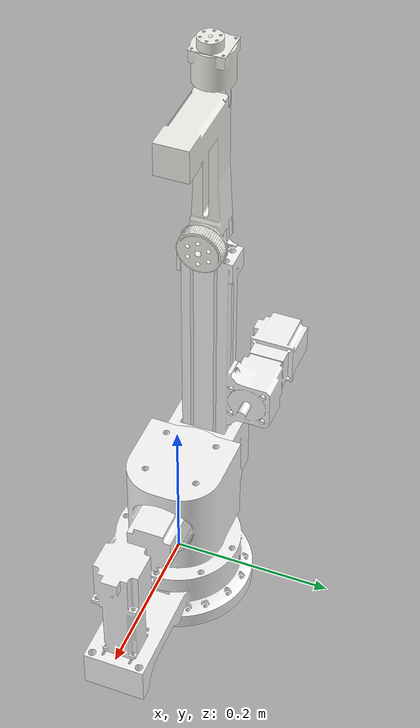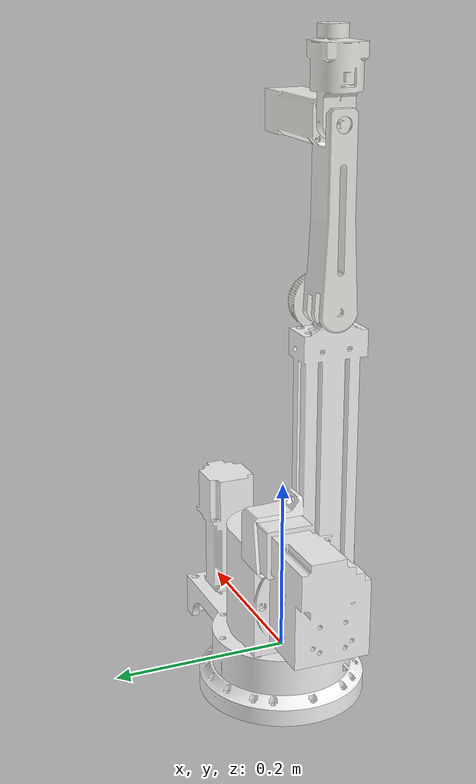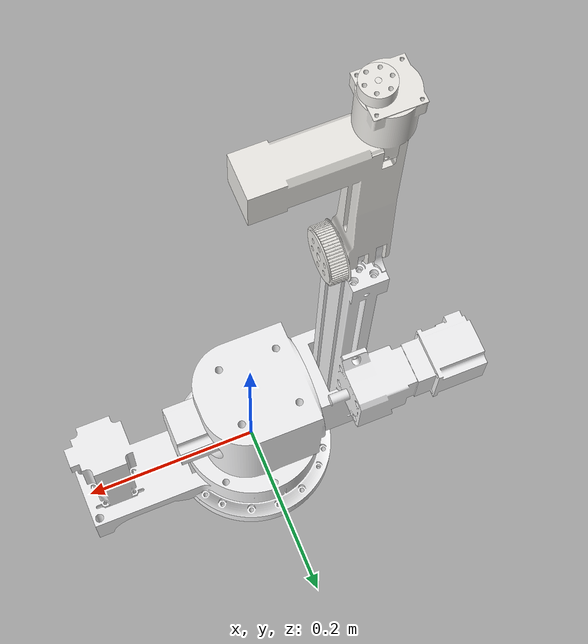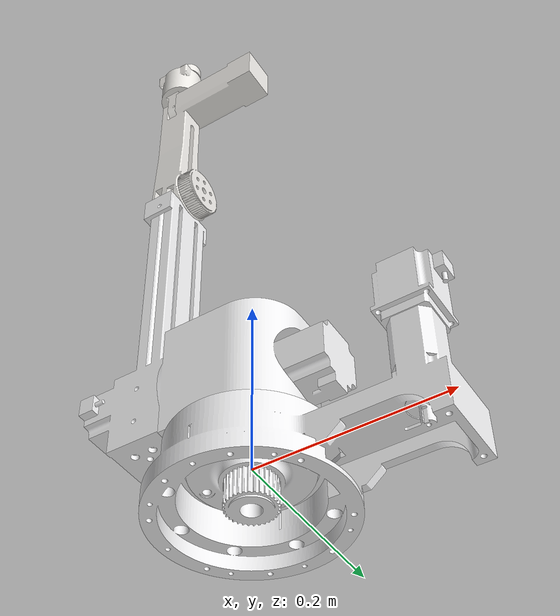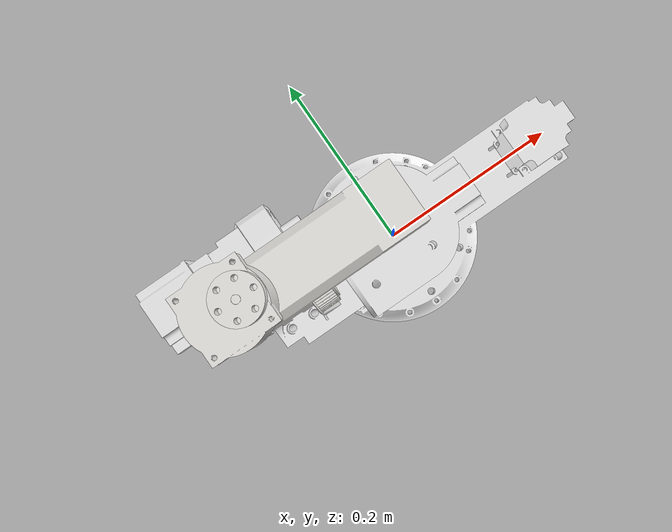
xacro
<?xml version="1.0"?>
<robot xmlns:xacro="http://www.ros.org/wiki/xacro" name="Untitled">

  <!-- Materials (shared across all assemblies) -->
  <material name="Aluminum_6061">
    <color rgba="0.961 0.961 0.965 1.0"/>
  </material>
  <material name="pla_plus">
    <color rgba="0.941 0.933 0.914 1.0"/>
  </material>

  <!-- Assembly includes -->
  <xacro:include filename="$(find roscue_arm_description)/urdf/assemblies/Untitled.urdf.xacro"/>

  <!-- Instantiate assemblies -->
  <xacro:Untitled prefix=""/>

</robot>

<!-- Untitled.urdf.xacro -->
<robot xmlns:xacro="http://www.ros.org/wiki/xacro" name="Untitled_macro">

  <xacro:macro name="Untitled" params="prefix">

    <!-- Links -->
    <link name="${prefix}base_link">
      <inertial>
        <origin xyz="0.085592 -0.000006 0.033051" rpy="0 0 0"/>
        <mass value="2.059958"/>
        <inertia ixx="9.903517e-03" ixy="-2.704119e-06" ixz="-7.021209e-03"
                 iyy="2.508404e-02" iyz="-5.074094e-07" izz="2.166122e-02"/>
      </inertial>
      <visual>
        <origin xyz="0.000000 0.000000 0.000000" rpy="0 0 0"/>
        <geometry>
          <mesh filename="package://roscue_arm_description/meshes/Untitled/base_link.dae" scale="1 1 1"/>
        </geometry>
        <material name="Aluminum_6061"/>
      </visual>
      <collision>
        <origin xyz="0.000000 0.000000 0.000000" rpy="0 0 0"/>
        <geometry>
          <mesh filename="package://roscue_arm_description/meshes/Untitled/base_link.dae" scale="1 1 1"/>
        </geometry>
      </collision>
    </link>

    <link name="${prefix}second_arm">
      <inertial>
        <origin xyz="0.004239 0.000002 0.047508" rpy="0 0 0"/>
        <mass value="2.740366"/>
        <inertia ixx="8.847475e-03" ixy="-2.706351e-07" ixz="-7.679844e-05"
                 iyy="1.074798e-02" iyz="5.141790e-07" izz="7.944490e-03"/>
      </inertial>
      <visual>
        <origin xyz="0.000000 0.000000 -0.027000" rpy="0 0 0"/>
        <geometry>
          <mesh filename="package://roscue_arm_description/meshes/Untitled/second_arm.dae" scale="1 1 1"/>
        </geometry>
        <material name="Aluminum_6061"/>
      </visual>
      <collision>
        <origin xyz="0.000000 0.000000 -0.027000" rpy="0 0 0"/>
        <geometry>
          <mesh filename="package://roscue_arm_description/meshes/Untitled/second_arm.dae" scale="1 1 1"/>
        </geometry>
      </collision>
    </link>

    <link name="${prefix}third_arm">
      <inertial>
        <origin xyz="0.090440 0.027174 0.062055" rpy="0 0 0"/>
        <mass value="2.121384"/>
        <inertia ixx="7.133714e-03" ixy="-5.709297e-04" ixz="-1.241331e-03"
                 iyy="1.865493e-02" iyz="-1.829145e-03" izz="1.667169e-02"/>
      </inertial>
      <visual>
        <origin xyz="-0.000000 -0.000000 -0.015000" rpy="0 0 0"/>
        <geometry>
          <mesh filename="package://roscue_arm_description/meshes/Untitled/third_arm.dae" scale="1 1 1"/>
        </geometry>
        <material name="Aluminum_6061"/>
      </visual>
      <collision>
        <origin xyz="-0.000000 -0.000000 -0.015000" rpy="0 0 0"/>
        <geometry>
          <mesh filename="package://roscue_arm_description/meshes/Untitled/third_arm.dae" scale="1 1 1"/>
        </geometry>
      </collision>
    </link>

    <link name="${prefix}fourth_arm">
      <inertial>
        <origin xyz="0.000004 0.054418 0.100360" rpy="0 0 0"/>
        <mass value="1.052809"/>
        <inertia ixx="8.554377e-03" ixy="2.966167e-07" ixz="6.240968e-07"
                 iyy="7.514592e-03" iyz="-1.419918e-03" izz="1.358899e-03"/>
      </inertial>
      <visual>
        <origin xyz="0.000000 0.021500 -0.380000" rpy="0 0 0"/>
        <geometry>
          <mesh filename="package://roscue_arm_description/meshes/Untitled/fourth_arm.dae" scale="1 1 1"/>
        </geometry>
        <material name="pla_plus"/>
      </visual>
      <collision>
        <origin xyz="0.000000 0.021500 -0.380000" rpy="0 0 0"/>
        <geometry>
          <mesh filename="package://roscue_arm_description/meshes/Untitled/fourth_arm.dae" scale="1 1 1"/>
        </geometry>
      </collision>
    </link>

    <link name="${prefix}fifth_arm">
      <inertial>
        <origin xyz="0.000000 -0.007427 0.049250" rpy="0 0 0"/>
        <mass value="0.211718"/>
        <inertia ixx="1.090154e-04" ixy="1.383154e-10" ixz="3.069742e-11"
                 iyy="1.109803e-04" iyz="-5.814571e-07" izz="5.571132e-05"/>
      </inertial>
      <visual>
        <origin xyz="0.000000 0.002500 -0.560000" rpy="0 0 0"/>
        <geometry>
          <mesh filename="package://roscue_arm_description/meshes/Untitled/fifth_arm.dae" scale="1 1 1"/>
        </geometry>
        <material name="pla_plus"/>
      </visual>
      <collision>
        <origin xyz="0.000000 0.002500 -0.560000" rpy="0 0 0"/>
        <geometry>
          <mesh filename="package://roscue_arm_description/meshes/Untitled/fifth_arm.dae" scale="1 1 1"/>
        </geometry>
      </collision>
    </link>

    <link name="${prefix}arm_to_gripper">
      <inertial>
        <origin xyz="0.000000 -0.000000 -0.006500" rpy="0 0 0"/>
        <mass value="0.010430"/>
        <inertia ixx="1.000000e-06" ixy="-2.710505e-20" ixz="0.000000e+00"
                 iyy="1.000000e-06" iyz="1.694066e-21" izz="1.199704e-06"/>
      </inertial>
      <visual>
        <origin xyz="-0.057129 0.166814 -0.013000" rpy="0 0 0"/>
        <geometry>
          <mesh filename="package://roscue_arm_description/meshes/Untitled/arm_to_gripper.dae" scale="1 1 1"/>
        </geometry>
        <material name="pla_plus"/>
      </visual>
      <collision>
        <origin xyz="-0.057129 0.166814 -0.013000" rpy="0 0 0"/>
        <geometry>
          <mesh filename="package://roscue_arm_description/meshes/Untitled/arm_to_gripper.dae" scale="1 1 1"/>
        </geometry>
      </collision>
    </link>

    <!-- Joints (internal to assembly) -->
    <joint name="${prefix}arm_joint_1" type="continuous">
      <parent link="${prefix}base_link"/>
      <child link="${prefix}second_arm"/>
      <origin xyz="0.000000 0.000000 0.027000" rpy="0.000000 -0.000000 0.000000"/>
      <axis xyz="0.000000 0.000000 -1.000000"/>
      <limit effort="100.0" velocity="1.00"/>
    </joint>

    <joint name="${prefix}arm_joint_2" type="continuous">
      <parent link="${prefix}second_arm"/>
      <child link="${prefix}third_arm"/>
      <origin xyz="-0.065000 0.000000 0.063000" rpy="0.000000 -1.570796 0.000000"/>
      <axis xyz="-0.000000 -0.000000 -1.000000"/>
      <limit effort="100.0" velocity="1.00"/>
    </joint>

    <joint name="${prefix}arm_joint_3" type="continuous">
      <parent link="${prefix}third_arm"/>
      <child link="${prefix}fourth_arm"/>
      <origin xyz="0.340500 0.000000 0.058500" rpy="-1.570796 -0.000000 -1.570796"/>
      <axis xyz="0.000000 1.000000 0.000000"/>
      <limit effort="100.0" velocity="1.00"/>
    </joint>

    <joint name="${prefix}arm_joint_4" type="continuous">
      <parent link="${prefix}fourth_arm"/>
      <child link="${prefix}fifth_arm"/>
      <origin xyz="-0.000500 0.019500 0.180000" rpy="-0.000000 0.000000 -0.000000"/>
      <axis xyz="-0.000000 1.000000 0.000000"/>
      <limit effort="100.0" velocity="1.00"/>
    </joint>

    <joint name="${prefix}tool_fixed_joint" type="fixed">
      <parent link="${prefix}fifth_arm"/>
      <child link="${prefix}arm_to_gripper"/>
      <origin xyz="0.000000 0.002500 0.090000" rpy="0.000000 -0.000000 1.570796"/>
    </joint>

    <!-- ROS 2 control: generated generic system -->
    <ros2_control name="${prefix}Untitled_system" type="system">
      <hardware>
        <plugin>mock_components/GenericSystem</plugin>
        <param name="cmd_topic">sim/Untitled_system/cmd</param>
        <param name="state_topic">sim/Untitled_system/state</param>
      </hardware>

      <joint name="${prefix}arm_joint_1">
        <command_interface name="position"/>
        <command_interface name="velocity"/>
        <state_interface name="position">
          <param name="initial_value">0.0</param>
        </state_interface>
        <state_interface name="velocity"/>
        <state_interface name="effort"/>
      </joint>
      <joint name="${prefix}arm_joint_2">
        <command_interface name="position"/>
        <command_interface name="velocity"/>
        <state_interface name="position">
          <param name="initial_value">0.0</param>
        </state_interface>
        <state_interface name="velocity"/>
        <state_interface name="effort"/>
      </joint>
      <joint name="${prefix}arm_joint_3">
        <command_interface name="position"/>
        <command_interface name="velocity"/>
        <state_interface name="position">
          <param name="initial_value">0.0</param>
        </state_interface>
        <state_interface name="velocity"/>
        <state_interface name="effort"/>
      </joint>
      <joint name="${prefix}arm_joint_4">
        <command_interface name="position"/>
        <command_interface name="velocity"/>
        <state_interface name="position">
          <param name="initial_value">0.0</param>
        </state_interface>
        <state_interface name="velocity"/>
        <state_interface name="effort"/>
      </joint>
    </ros2_control>

  </xacro:macro>

</robot>
